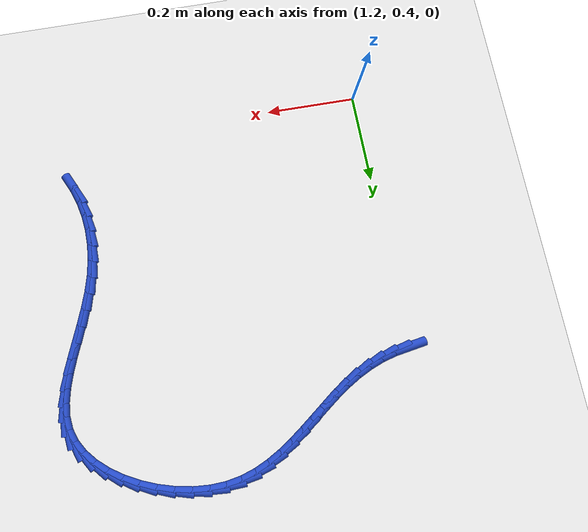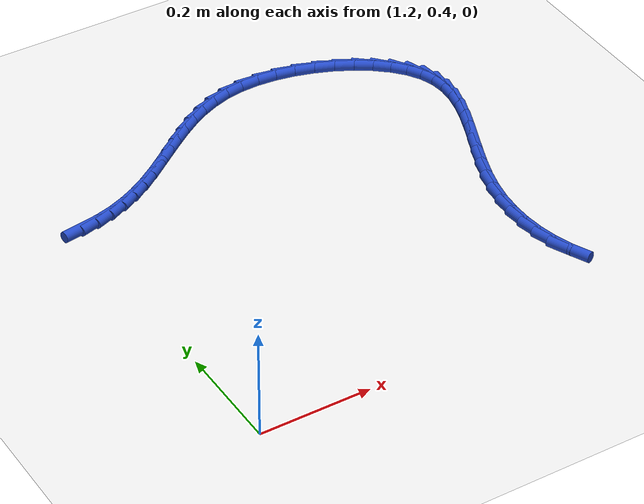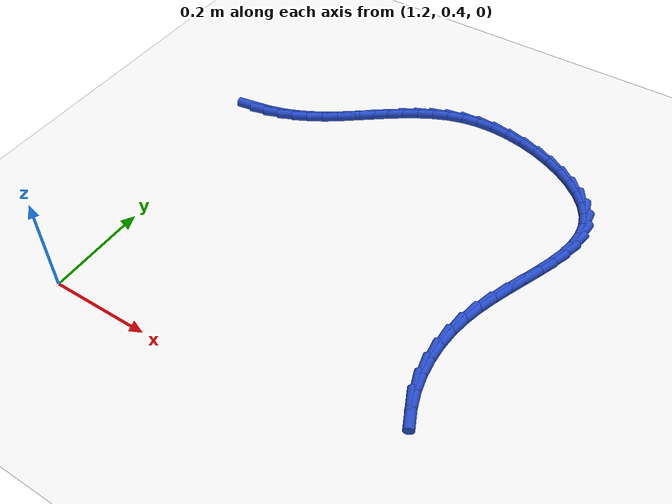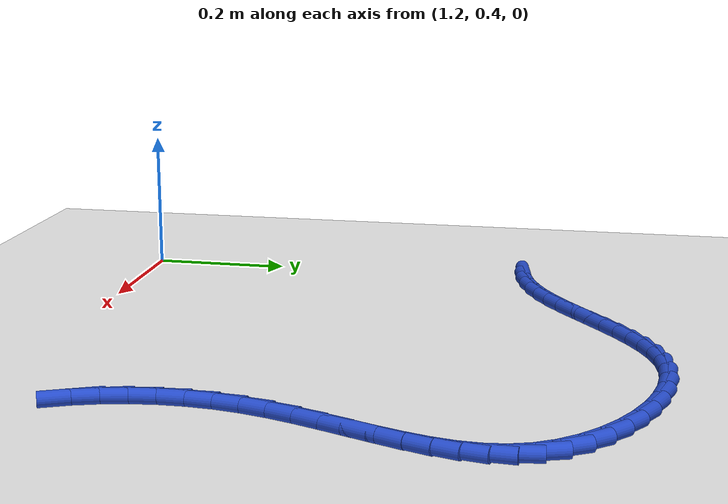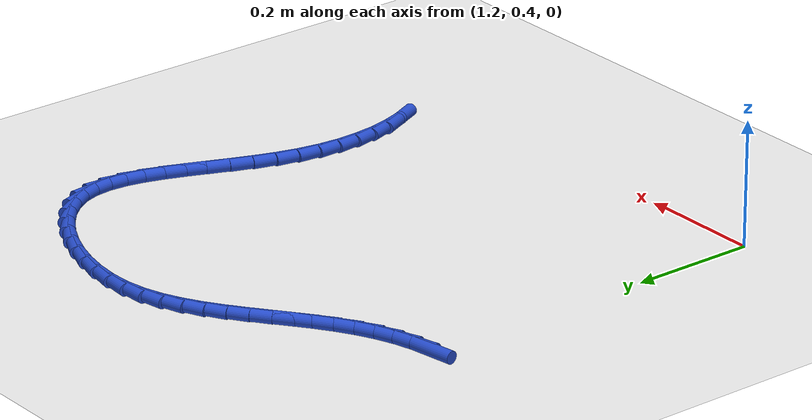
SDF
<sdf version="1.6">
 <world name="default">
  <model name="ground_plane">
   <static>1</static>
   <link name="link">
    <collision name="collision">
     <geometry><plane><normal>0 0 1</normal><size>100 100</size></plane></geometry>
     <surface><friction><ode><mu>100</mu><mu2>50</mu2></ode></friction></surface>
    </collision>
    <visual name="visual">
     <cast_shadows>0</cast_shadows>
     <geometry><plane><normal>0 0 1</normal><size>100 100</size></plane></geometry>
     <material>
      <script><uri>file://media/materials/scripts/gazebo.material</uri><name>Gazebo/WhiteGlow</name></script>
     </material>
    </visual>
   </link>
  </model>
  <model name="line">
   <link name="link_62">
    <pose>1.2038590404547553 0.9836319950664709 0.01 0 1.57 0.16394373681483182</pose>
    <collision name="collision">
     <geometry><cylinder><radius>0.01</radius><length>0.08</length></cylinder></geometry>
    </collision>
    <visual name="visual">
     <material>
      <script><name>Gazebo/Blue</name><uri>file://media/materials/scripts/gazebo.material</uri></script>
     </material>
     <geometry><cylinder><radius>0.01</radius><length>0.08</length></cylinder></geometry>
    </visual>
   </link>
   <link name="link_63">
    <pose>1.23460186323951 0.988717734234582 0.01 0 1.57 0.26721386278445103</pose>
    <collision name="collision">
     <geometry><cylinder><radius>0.01</radius><length>0.08</length></cylinder></geometry>
    </collision>
    <visual name="visual">
     <material>
      <script><name>Gazebo/Blue</name><uri>file://media/materials/scripts/gazebo.material</uri></script>
     </material>
     <geometry><cylinder><radius>0.01</radius><length>0.08</length></cylinder></geometry>
    </visual>
   </link>
   <link name="link_64">
    <pose>1.264412760564425 0.9968787922465879 0.01 0 1.57 0.36420948067374337</pose>
    <collision name="collision">
     <geometry><cylinder><radius>0.01</radius><length>0.08</length></cylinder></geometry>
    </collision>
    <visual name="visual">
     <material>
      <script><name>Gazebo/Blue</name><uri>file://media/materials/scripts/gazebo.material</uri></script>
     </material>
     <geometry><cylinder><radius>0.01</radius><length>0.08</length></cylinder></geometry>
    </visual>
   </link>
   <link name="link_65">
    <pose>1.2933265950580946 1.0079012196526445 0.01 0 1.57 0.45344432547468283</pose>
    <collision name="collision">
     <geometry><cylinder><radius>0.01</radius><length>0.08</length></cylinder></geometry>
    </collision>
    <visual name="visual">
     <material>
      <script><name>Gazebo/Blue</name><uri>file://media/materials/scripts/gazebo.material</uri></script>
     </material>
     <geometry><cylinder><radius>0.01</radius><length>0.08</length></cylinder></geometry>
    </visual>
   </link>
   <link name="link_66">
    <pose>1.3213782293491136 1.0215710670029072 0.01 0 1.57 0.5337361373017906</pose>
    <collision name="collision">
     <geometry><cylinder><radius>0.01</radius><length>0.08</length></cylinder></geometry>
    </collision>
    <visual name="visual">
     <material>
      <script><name>Gazebo/Blue</name><uri>file://media/materials/scripts/gazebo.material</uri></script>
     </material>
     <geometry><cylinder><radius>0.01</radius><length>0.08</length></cylinder></geometry>
    </visual>
   </link>
   <link name="link_67">
    <pose>1.34860862133253 1.0376627798742941 0.01 0 1.57 0.597008283840292</pose>
    <collision name="collision">
     <geometry><cylinder><radius>0.01</radius><length>0.08</length></cylinder></geometry>
    </collision>
    <visual name="visual">
     <material>
      <script><name>Gazebo/Blue</name><uri>file://media/materials/scripts/gazebo.material</uri></script>
     </material>
     <geometry><cylinder><radius>0.01</radius><length>0.08</length></cylinder></geometry>
    </visual>
   </link>
   <link name="link_68">
    <pose>1.375178117604499 1.0557234958676043 0.01 0 1.57 0.6370212797496714</pose>
    <collision name="collision">
     <geometry><cylinder><radius>0.01</radius><length>0.08</length></cylinder></geometry>
    </collision>
    <visual name="visual">
     <material>
      <script><name>Gazebo/Blue</name><uri>file://media/materials/scripts/gazebo.material</uri></script>
     </material>
     <geometry><cylinder><radius>0.01</radius><length>0.08</length></cylinder></geometry>
    </visual>
   </link>
   <link name="link_69">
    <pose>1.4013559264389752 1.0750930873447317 0.01 0 1.57 0.6548543568633062</pose>
    <collision name="collision">
     <geometry><cylinder><radius>0.01</radius><length>0.08</length></cylinder></geometry>
    </collision>
    <visual name="visual">
     <material>
      <script><name>Gazebo/Blue</name><uri>file://media/materials/scripts/gazebo.material</uri></script>
     </material>
     <geometry><cylinder><radius>0.01</radius><length>0.08</length></cylinder></geometry>
    </visual>
   </link>
   <link name="link_70">
    <pose>1.4274152403465667 1.0951038409516558 0.01 0 1.57 0.651357179426609</pose>
    <collision name="collision">
     <geometry><cylinder><radius>0.01</radius><length>0.08</length></cylinder></geometry>
    </collision>
    <visual name="visual">
     <material>
      <script><name>Gazebo/Blue</name><uri>file://media/materials/scripts/gazebo.material</uri></script>
     </material>
     <geometry><cylinder><radius>0.01</radius><length>0.08</length></cylinder></geometry>
    </visual>
   </link>
   <link name="link_71">
    <pose>1.453629251837882 1.1150880433343573 0.01 0 1.57 0.6266819886396803</pose>
    <collision name="collision">
     <geometry><cylinder><radius>0.01</radius><length>0.08</length></cylinder></geometry>
    </collision>
    <visual name="visual">
     <material>
      <script><name>Gazebo/Blue</name><uri>file://media/materials/scripts/gazebo.material</uri></script>
     </material>
     <geometry><cylinder><radius>0.01</radius><length>0.08</length></cylinder></geometry>
    </visual>
   </link>
   <link name="link_72">
    <pose>1.4802711534235282 1.1343779811388155 0.01 0 1.57 0.5803504668529568</pose>
    <collision name="collision">
     <geometry><cylinder><radius>0.01</radius><length>0.08</length></cylinder></geometry>
    </collision>
    <visual name="visual">
     <material>
      <script><name>Gazebo/Blue</name><uri>file://media/materials/scripts/gazebo.material</uri></script>
     </material>
     <geometry><cylinder><radius>0.01</radius><length>0.08</length></cylinder></geometry>
    </visual>
   </link>
   <link name="link_73">
    <pose>1.5076141376141132 1.15230594101101 0.01 0 1.57 0.5115792150474214</pose>
    <collision name="collision">
     <geometry><cylinder><radius>0.01</radius><length>0.08</length></cylinder></geometry>
    </collision>
    <visual name="visual">
     <material>
      <script><name>Gazebo/Blue</name><uri>file://media/materials/scripts/gazebo.material</uri></script>
     </material>
     <geometry><cylinder><radius>0.01</radius><length>0.08</length></cylinder></geometry>
    </visual>
   </link>
   <link name="link_74">
    <pose>1.5359313969202466 1.1682042095969212 0.01 0 1.57 0.4199455316465645</pose>
    <collision name="collision">
     <geometry><cylinder><radius>0.01</radius><length>0.08</length></cylinder></geometry>
    </collision>
    <visual name="visual">
     <material>
      <script><name>Gazebo/Blue</name><uri>file://media/materials/scripts/gazebo.material</uri></script>
     </material>
     <geometry><cylinder><radius>0.01</radius><length>0.08</length></cylinder></geometry>
    </visual>
   </link>
   <link name="link_75">
    <pose>1.5654961238525353 1.1814050735425288 0.01 0 1.57 0.30644357248725673</pose>
    <collision name="collision">
     <geometry><cylinder><radius>0.01</radius><length>0.08</length></cylinder></geometry>
    </collision>
    <visual name="visual">
     <material>
      <script><name>Gazebo/Blue</name><uri>file://media/materials/scripts/gazebo.material</uri></script>
     </material>
     <geometry><cylinder><radius>0.01</radius><length>0.08</length></cylinder></geometry>
    </visual>
   </link>
   <link name="link_76">
    <pose>1.5965815109215875 1.1912408194938124 0.01 0 1.57 0.17472172366934946</pose>
    <collision name="collision">
     <geometry><cylinder><radius>0.01</radius><length>0.08</length></cylinder></geometry>
    </collision>
    <visual name="visual">
     <material>
      <script><name>Gazebo/Blue</name><uri>file://media/materials/scripts/gazebo.material</uri></script>
     </material>
     <geometry><cylinder><radius>0.01</radius><length>0.08</length></cylinder></geometry>
    </visual>
   </link>
   <link name="link_77">
    <pose>1.6294598441910815 1.197044557317005 0.01 0 1.57 0.03937473053387125</pose>
    <collision name="collision">
     <geometry><cylinder><radius>0.01</radius><length>0.08</length></cylinder></geometry>
    </collision>
    <visual name="visual">
     <material>
      <script><name>Gazebo/Blue</name><uri>file://media/materials/scripts/gazebo.material</uri></script>
     </material>
     <geometry><cylinder><radius>0.01</radius><length>0.08</length></cylinder></geometry>
    </visual>
   </link>
   <link name="link_78">
    <pose>1.6641166099041123 1.1984098637775236 0.01 0 1.57 -0.07958024891510279</pose>
    <collision name="collision">
     <geometry><cylinder><radius>0.01</radius><length>0.08</length></cylinder></geometry>
    </collision>
    <visual name="visual">
     <material>
      <script><name>Gazebo/Blue</name><uri>file://media/materials/scripts/gazebo.material</uri></script>
     </material>
     <geometry><cylinder><radius>0.01</radius><length>0.08</length></cylinder></geometry>
    </visual>
   </link>
   <link name="link_79">
    <pose>1.6998431577284783 1.1955607191082884 0.01 0 1.57 -0.18532063363116924</pose>
    <collision name="collision">
     <geometry><cylinder><radius>0.01</radius><length>0.08</length></cylinder></geometry>
    </collision>
    <visual name="visual">
     <material>
      <script><name>Gazebo/Blue</name><uri>file://media/materials/scripts/gazebo.material</uri></script>
     </material>
     <geometry><cylinder><radius>0.01</radius><length>0.08</length></cylinder></geometry>
    </visual>
   </link>
   <link name="link_80">
    <pose>1.7358278890162122 1.1888145995162749 0.01 0 1.57 -0.28357259773742616</pose>
    <collision name="collision">
     <geometry><cylinder><radius>0.01</radius><length>0.08</length></cylinder></geometry>
    </collision>
    <visual name="visual">
     <material>
      <script><name>Gazebo/Blue</name><uri>file://media/materials/scripts/gazebo.material</uri></script>
     </material>
     <geometry><cylinder><radius>0.01</radius><length>0.08</length></cylinder></geometry>
    </visual>
   </link>
   <link name="link_81">
    <pose>1.7712592051193474 1.178488981208458 0.01 0 1.57 -0.37952210516816776</pose>
    <collision name="collision">
     <geometry><cylinder><radius>0.01</radius><length>0.08</length></cylinder></geometry>
    </collision>
    <visual name="visual">
     <material>
      <script><name>Gazebo/Blue</name><uri>file://media/materials/scripts/gazebo.material</uri></script>
     </material>
     <geometry><cylinder><radius>0.01</radius><length>0.08</length></cylinder></geometry>
    </visual>
   </link>
   <link name="link_82">
    <pose>1.8053255073899153 1.1649013403918114 0.01 0 1.57 -0.47827315718085434</pose>
    <collision name="collision">
     <geometry><cylinder><radius>0.01</radius><length>0.08</length></cylinder></geometry>
    </collision>
    <visual name="visual">
     <material>
      <script><name>Gazebo/Blue</name><uri>file://media/materials/scripts/gazebo.material</uri></script>
     </material>
     <geometry><cylinder><radius>0.01</radius><length>0.08</length></cylinder></geometry>
    </visual>
   </link>
   <link name="link_83">
    <pose>1.8372151971799493 1.1483691532733102 0.01 0 1.57 -0.5854016015032583</pose>
    <collision name="collision">
     <geometry><cylinder><radius>0.01</radius><length>0.08</length></cylinder></geometry>
    </collision>
    <visual name="visual">
     <material>
      <script><name>Gazebo/Blue</name><uri>file://media/materials/scripts/gazebo.material</uri></script>
     </material>
     <geometry><cylinder><radius>0.01</radius><length>0.08</length></cylinder></geometry>
    </visual>
   </link>
   <link name="link_84">
    <pose>1.8661166758414813 1.1292098960599297 0.01 0 1.57 -0.7075490019462787</pose>
    <collision name="collision">
     <geometry><cylinder><radius>0.01</radius><length>0.08</length></cylinder></geometry>
    </collision>
    <visual name="visual">
     <material>
      <script><name>Gazebo/Blue</name><uri>file://media/materials/scripts/gazebo.material</uri></script>
     </material>
     <geometry><cylinder><radius>0.01</radius><length>0.08</length></cylinder></geometry>
    </visual>
   </link>
   <link name="link_85">
    <pose>1.891218344726544 1.107741044958644 0.01 0 1.57 -0.8528865316217304</pose>
    <collision name="collision">
     <geometry><cylinder><radius>0.01</radius><length>0.08</length></cylinder></geometry>
    </collision>
    <visual name="visual">
     <material>
      <script><name>Gazebo/Blue</name><uri>file://media/materials/scripts/gazebo.material</uri></script>
     </material>
     <geometry><cylinder><radius>0.01</radius><length>0.08</length></cylinder></geometry>
    </visual>
   </link>
   <link name="link_86">
    <pose>1.911708605187171 1.0842800761764284 0.01 0 1.57 -1.0307897707030038</pose>
    <collision name="collision">
     <geometry><cylinder><radius>0.01</radius><length>0.08</length></cylinder></geometry>
    </collision>
    <visual name="visual">
     <material>
      <script><name>Gazebo/Blue</name><uri>file://media/materials/scripts/gazebo.material</uri></script>
     </material>
     <geometry><cylinder><radius>0.01</radius><length>0.08</length></cylinder></geometry>
    </visual>
   </link>
   <link name="link_87">
    <pose>1.9267758585753931 1.0591444659202571 0.01 0 1.57 -1.2467827404571947</pose>
    <collision name="collision">
     <geometry><cylinder><radius>0.01</radius><length>0.08</length></cylinder></geometry>
    </collision>
    <visual name="visual">
     <material>
      <script><name>Gazebo/Blue</name><uri>file://media/materials/scripts/gazebo.material</uri></script>
     </material>
     <geometry><cylinder><radius>0.01</radius><length>0.08</length></cylinder></geometry>
    </visual>
   </link>
   <link name="link_88">
    <pose>1.935676486815531 1.0326426473332562 0.01 0 1.57 -1.4649981332779016</pose>
    <collision name="collision">
     <geometry><cylinder><radius>0.01</radius><length>0.08</length></cylinder></geometry>
    </collision>
    <visual name="visual">
     <material>
      <script><name>Gazebo/Blue</name><uri>file://media/materials/scripts/gazebo.material</uri></script>
     </material>
     <geometry><cylinder><radius>0.01</radius><length>0.08</length></cylinder></geometry>
    </visual>
   </link>
   <link name="link_89">
    <pose>1.9386165860237887 1.0049567185515444 0.01 0 1.57 1.4973972664388395</pose>
    <collision name="collision">
     <geometry><cylinder><radius>0.01</radius><length>0.08</length></cylinder></geometry>
    </collision>
    <visual name="visual">
     <material>
      <script><name>Gazebo/Blue</name><uri>file://media/materials/scripts/gazebo.material</uri></script>
     </material>
     <geometry><cylinder><radius>0.01</radius><length>0.08</length></cylinder></geometry>
    </visual>
   </link>
   <link name="link_90">
    <pose>1.9365003006737787 0.9761759203601817 0.01 0 1.57 1.3639077399948627</pose>
    <collision name="collision">
     <geometry><cylinder><radius>0.01</radius><length>0.08</length></cylinder></geometry>
    </collision>
    <visual name="visual">
     <material>
      <script><name>Gazebo/Blue</name><uri>file://media/materials/scripts/gazebo.material</uri></script>
     </material>
     <geometry><cylinder><radius>0.01</radius><length>0.08</length></cylinder></geometry>
    </visual>
   </link>
   <link name="link_91">
    <pose>1.9302479223259712 0.9463873455902982 0.01 0 1.57 1.271727029027854</pose>
    <collision name="collision">
     <geometry><cylinder><radius>0.01</radius><length>0.08</length></cylinder></geometry>
    </collision>
    <visual name="visual">
     <material>
      <script><name>Gazebo/Blue</name><uri>file://media/materials/scripts/gazebo.material</uri></script>
     </material>
     <geometry><cylinder><radius>0.01</radius><length>0.08</length></cylinder></geometry>
    </visual>
   </link>
   <link name="link_92">
    <pose>1.9207797425408342 0.9156780870730226 0.01 0 1.57 1.2138301396030786</pose>
    <collision name="collision">
     <geometry><cylinder><radius>0.01</radius><length>0.08</length></cylinder></geometry>
    </collision>
    <visual name="visual">
     <material>
      <script><name>Gazebo/Blue</name><uri>file://media/materials/scripts/gazebo.material</uri></script>
     </material>
     <geometry><cylinder><radius>0.01</radius><length>0.08</length></cylinder></geometry>
    </visual>
   </link>
   <link name="link_93">
    <pose>1.9090160528788365 0.8841352376394841 0.01 0 1.57 1.1843459658392783</pose>
    <collision name="collision">
     <geometry><cylinder><radius>0.01</radius><length>0.08</length></cylinder></geometry>
    </collision>
    <visual name="visual">
     <material>
      <script><name>Gazebo/Blue</name><uri>file://media/materials/scripts/gazebo.material</uri></script>
     </material>
     <geometry><cylinder><radius>0.01</radius><length>0.08</length></cylinder></geometry>
    </visual>
   </link>
   <link name="link_94">
    <pose>1.895877144900448 0.8518458901208121 0.01 0 1.57 1.1794965760179588</pose>
    <collision name="collision">
     <geometry><cylinder><radius>0.01</radius><length>0.08</length></cylinder></geometry>
    </collision>
    <visual name="visual">
     <material>
      <script><name>Gazebo/Blue</name><uri>file://media/materials/scripts/gazebo.material</uri></script>
     </material>
     <geometry><cylinder><radius>0.01</radius><length>0.08</length></cylinder></geometry>
    </visual>
   </link>
   <link name="link_95">
    <pose>1.882283310166137 0.8188971373481361 0.01 0 1.57 1.1975103151874482</pose>
    <collision name="collision">
     <geometry><cylinder><radius>0.01</radius><length>0.08</length></cylinder></geometry>
    </collision>
    <visual name="visual">
     <material>
      <script><name>Gazebo/Blue</name><uri>file://media/materials/scripts/gazebo.material</uri></script>
     </material>
     <geometry><cylinder><radius>0.01</radius><length>0.08</length></cylinder></geometry>
    </visual>
   </link>
   <link name="link_96">
    <pose>1.8691548402363727 0.7853760721525852 0.01 0 1.57 1.2383030598993645</pose>
    <collision name="collision">
     <geometry><cylinder><radius>0.01</radius><length>0.08</length></cylinder></geometry>
    </collision>
    <visual name="visual">
     <material>
      <script><name>Gazebo/Blue</name><uri>file://media/materials/scripts/gazebo.material</uri></script>
     </material>
     <geometry><cylinder><radius>0.01</radius><length>0.08</length></cylinder></geometry>
    </visual>
   </link>
   <link name="link_97">
    <pose>1.8574120266716247 0.7513697873652891 0.01 0 1.57 1.3030881653291169</pose>
    <collision name="collision">
     <geometry><cylinder><radius>0.01</radius><length>0.08</length></cylinder></geometry>
    </collision>
    <visual name="visual">
     <material>
      <script><name>Gazebo/Blue</name><uri>file://media/materials/scripts/gazebo.material</uri></script>
     </material>
     <geometry><cylinder><radius>0.01</radius><length>0.08</length></cylinder></geometry>
    </visual>
   </link>
   <link name="link_98">
    <pose>1.8479751610323616 0.7169653758173766 0.01 0 1.57 1.3906959766512763</pose>
    <collision name="collision">
     <geometry><cylinder><radius>0.01</radius><length>0.08</length></cylinder></geometry>
    </collision>
    <visual name="visual">
     <material>
      <script><name>Gazebo/Blue</name><uri>file://media/materials/scripts/gazebo.material</uri></script>
     </material>
     <geometry><cylinder><radius>0.01</radius><length>0.08</length></cylinder></geometry>
    </visual>
   </link>
   <link name="link_99">
    <pose>1.841658877950402 0.6822744770772285 0.01 0 1.57 1.4853063883824962</pose>
    <collision name="collision">
     <geometry><cylinder><radius>0.01</radius><length>0.08</length></cylinder></geometry>
    </collision>
    <visual name="visual">
     <material>
      <script><name>Gazebo/Blue</name><uri>file://media/materials/scripts/gazebo.material</uri></script>
     </material>
     <geometry><cylinder><radius>0.01</radius><length>0.08</length></cylinder></geometry>
    </visual>
   </link>
   <link name="link_100">
    <pose>1.838682771941667 0.6475469733591674 0.01 0 1.57 -1.5599008953732072</pose>
    <collision name="collision">
     <geometry><cylinder><radius>0.01</radius><length>0.08</length></cylinder></geometry>
    </collision>
    <visual name="visual">
     <material>
      <script><name>Gazebo/Blue</name><uri>file://media/materials/scripts/gazebo.material</uri></script>
     </material>
     <geometry><cylinder><radius>0.01</radius><length>0.08</length></cylinder></geometry>
    </visual>
   </link>
   <link name="link_101">
    <pose>1.8390583073537017 0.6130811007017517 0.01 0 1.57 -1.460981349042833</pose>
    <collision name="collision">
     <geometry><cylinder><radius>0.01</radius><length>0.08</length></cylinder></geometry>
    </collision>
    <visual name="visual">
     <material>
      <script><name>Gazebo/Blue</name><uri>file://media/materials/scripts/gazebo.material</uri></script>
     </material>
     <geometry><cylinder><radius>0.01</radius><length>0.08</length></cylinder></geometry>
    </visual>
   </link>
   <link name="link_102">
    <pose>1.8427967287048073 0.579175146215349 0.01 0 1.57 -1.358809456178743</pose>
    <collision name="collision">
     <geometry><cylinder><radius>0.01</radius><length>0.08</length></cylinder></geometry>
    </collision>
    <visual name="visual">
     <material>
      <script><name>Gazebo/Blue</name><uri>file://media/materials/scripts/gazebo.material</uri></script>
     </material>
     <geometry><cylinder><radius>0.01</radius><length>0.08</length></cylinder></geometry>
    </visual>
   </link>
   <link name="link_103">
    <pose>1.8499092805132877 0.5461273970103285 0.01 0 1.57 -1.2527894688284402</pose>
    <collision name="collision">
     <geometry><cylinder><radius>0.01</radius><length>0.08</length></cylinder></geometry>
    </collision>
    <visual name="visual">
     <material>
      <script><name>Gazebo/Blue</name><uri>file://media/materials/scripts/gazebo.material</uri></script>
     </material>
     <geometry><cylinder><radius>0.01</radius><length>0.08</length></cylinder></geometry>
    </visual>
   </link>
   <link name="link_104">
    <pose>1.8604072072974451 0.5142361401970581 0.01 0 1.57 -1.1425421597950924</pose>
    <collision name="collision">
     <geometry><cylinder><radius>0.01</radius><length>0.08</length></cylinder></geometry>
    </collision>
    <visual name="visual">
     <material>
      <script><name>Gazebo/Blue</name><uri>file://media/materials/scripts/gazebo.material</uri></script>
     </material>
     <geometry><cylinder><radius>0.01</radius><length>0.08</length></cylinder></geometry>
    </visual>
   </link>
  </model>
 </world>
</sdf>
